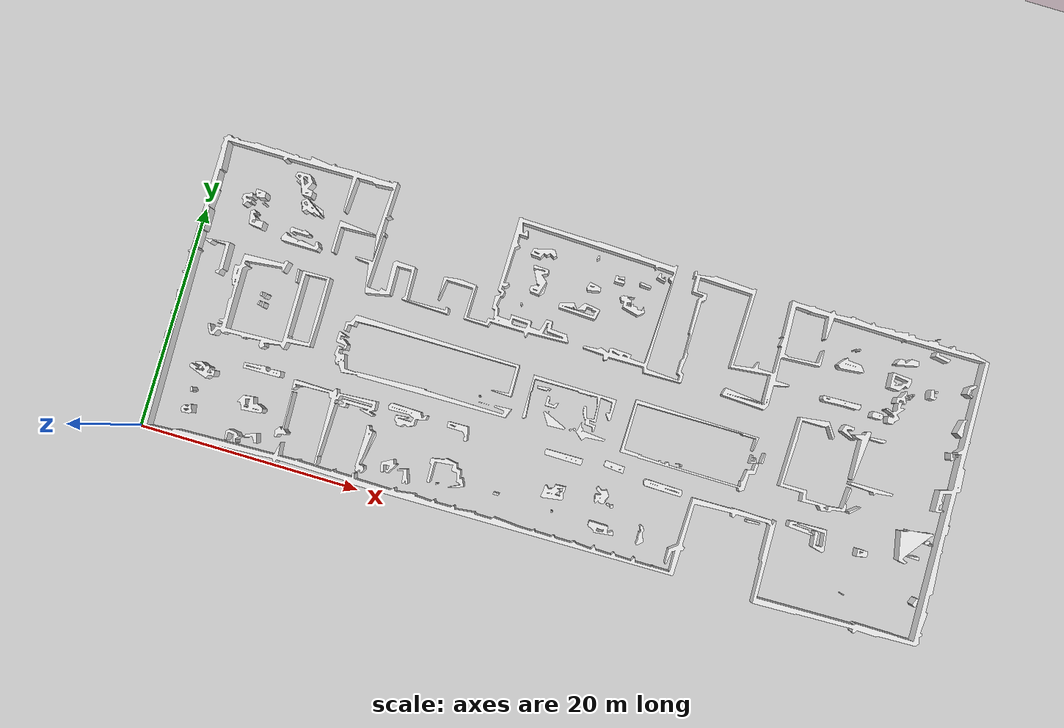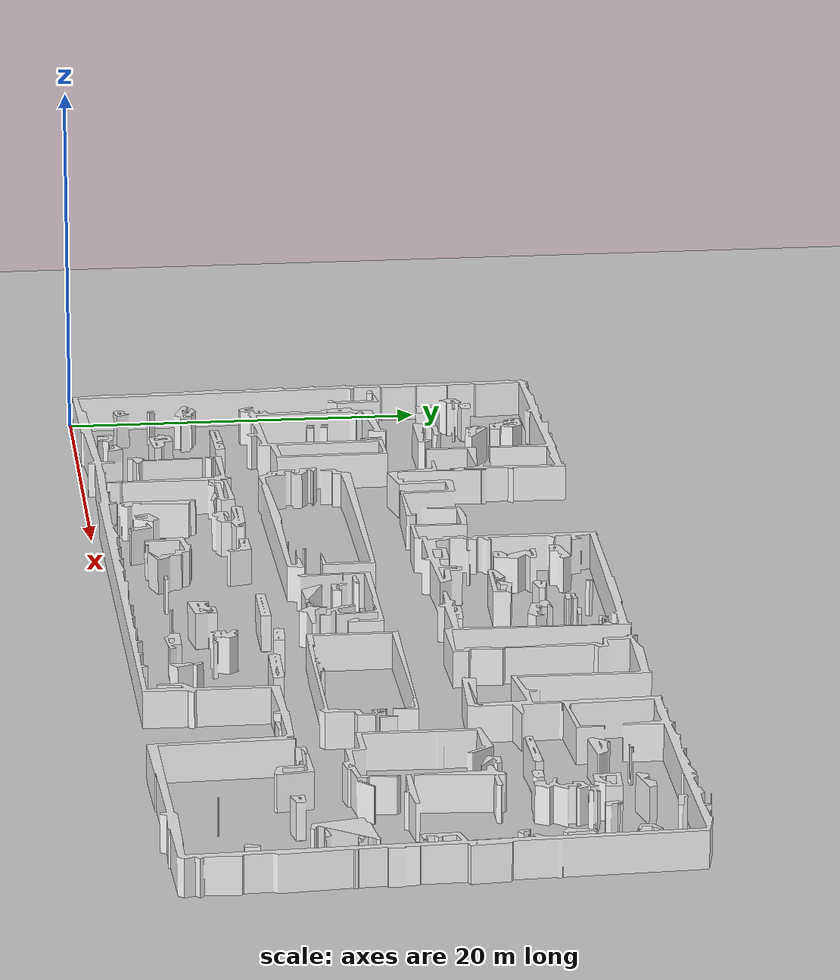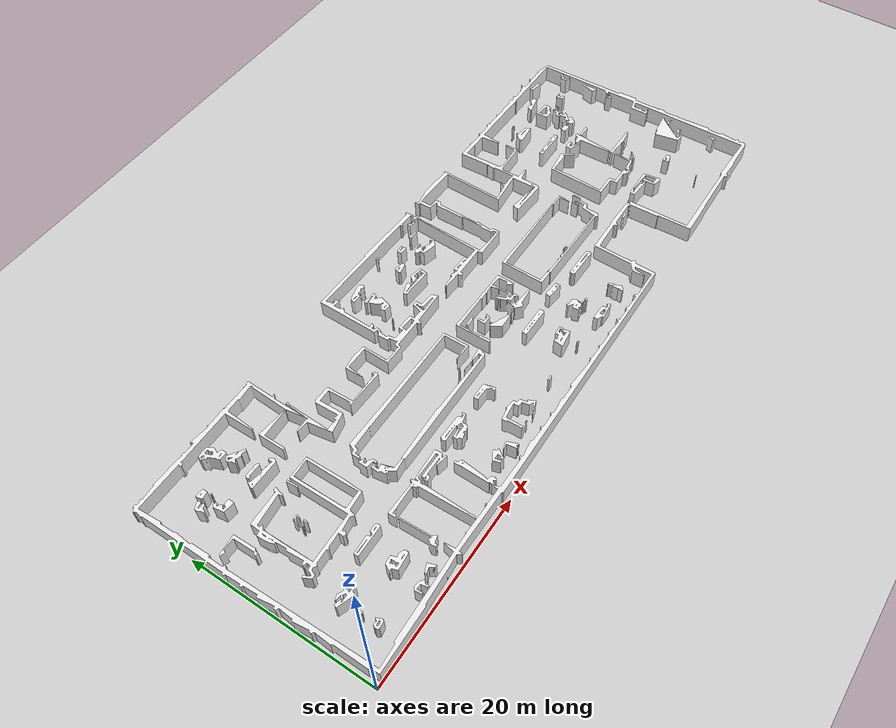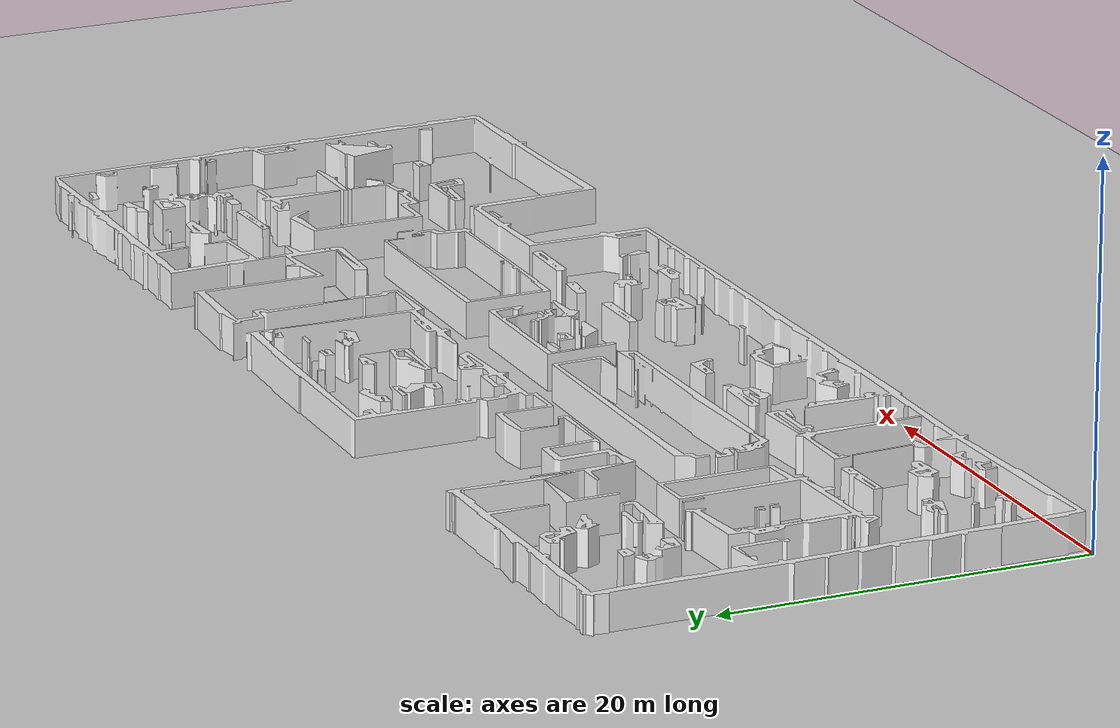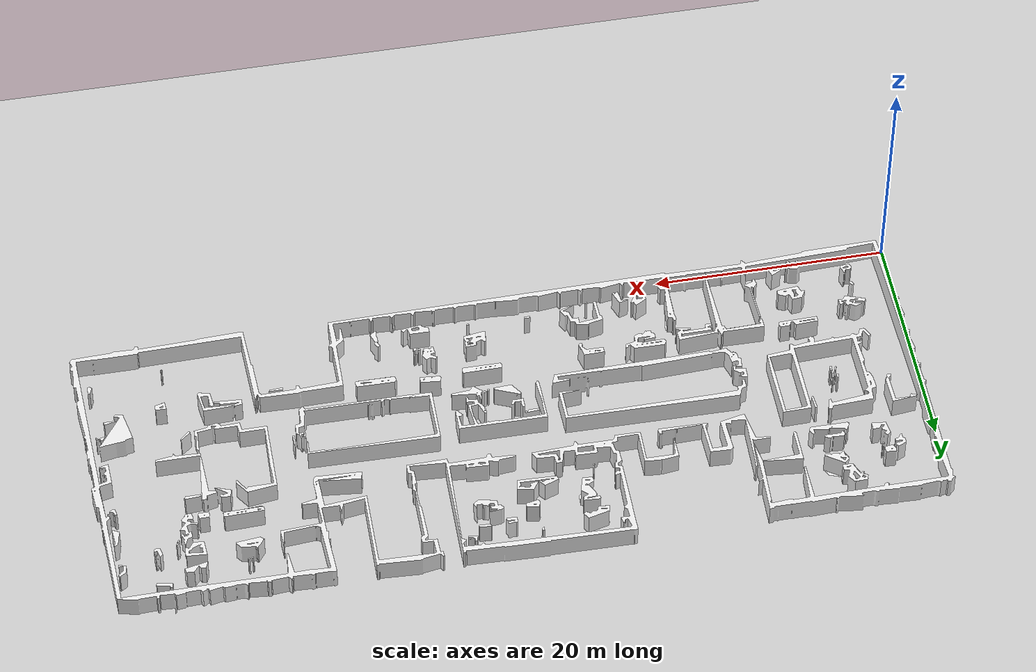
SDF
<?xml version="1.0" ?>
<sdf version="1.4">
  <world name="default">
    <plugin name="ros_interface_plugin" filename="librotors_gazebo_ros_interface_plugin.so"/>
    <include>
      <uri>model://ground_plane</uri>
    </include>
    <include>
      <uri>model://sun</uri>
    </include>
    <include>
      <uri>model://rng_walls</uri>
      <name>rng_walls</name>
      <pose>0.0 0.0 0 0 0 0</pose>
    </include>
    <gui>
      <camera name="user_camera">
        <pose>35 -2 65 0 1.4 1.57</pose>
      </camera>
    </gui>
  </world>
</sdf>

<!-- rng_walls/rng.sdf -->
<sdf version="1.4">
  <model name="rng_walls">
    <static>1</static>
    <link name="link">

      <collision name="colision1">
        <pose>0 0 0 0 0 0</pose>
        <geometry>
          <mesh>
            <uri>model://rng_walls/rng.dae</uri>
	    <scale> 1 1 1 </scale>
          </mesh>
        </geometry>
        <surface>
          <bounce />
          <friction>
            <ode />
          </friction>
          <contact>
            <ode />
          </contact>
        </surface>
      </collision>

      <visual name="visual1">
        <pose>0 0 0 0 0 0</pose>
        <geometry>
          <mesh>
            <uri>model://rng_walls/rng.dae</uri>
	    <scale> 1 1 1 </scale>
          </mesh>
        </geometry>
        <material>
          <script>
            <uri>file://media/materials/scripts/gazebo.material</uri>
            <name>Gazebo/White</name>
          </script>
        </material>
      </visual>

      <velocity_decay>
        <linear>0.000000</linear>
        <angular>0.000000</angular>
      </velocity_decay>
      <self_collide>0</self_collide>
      <kinematic>0</kinematic>
      <gravity>0</gravity>
    </link>
  </model>
</sdf>
